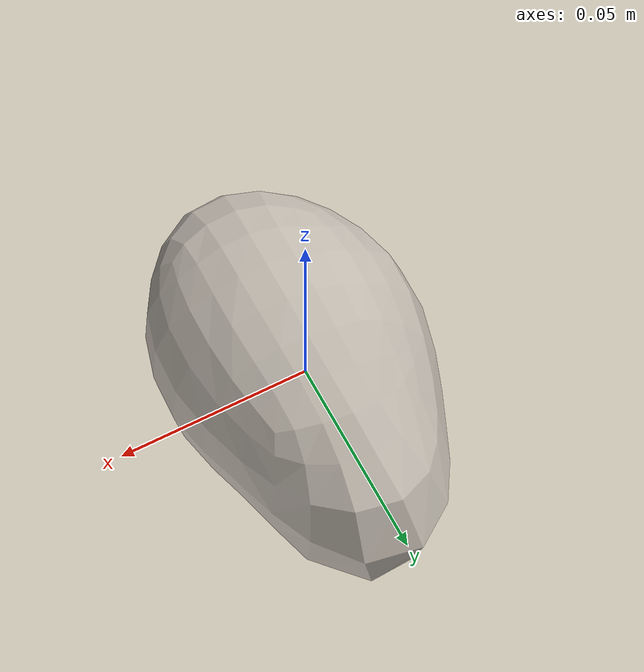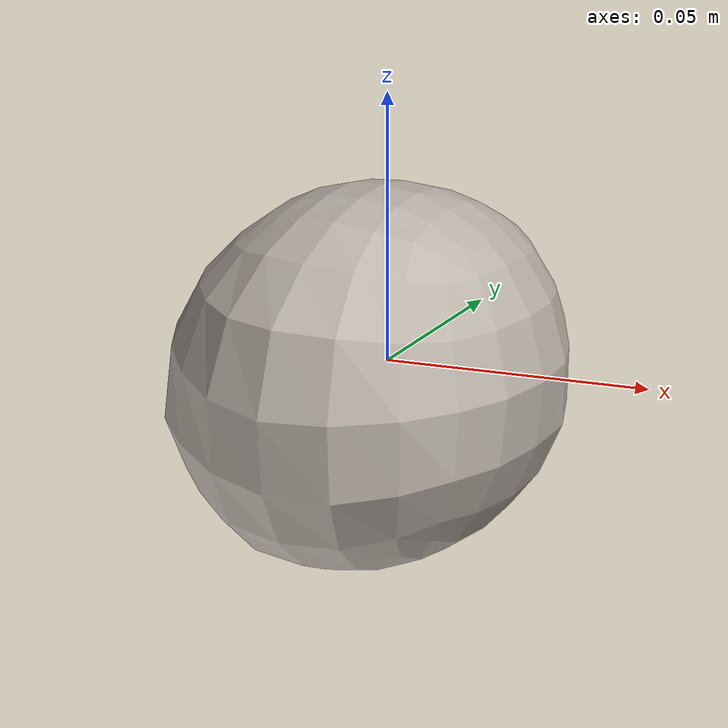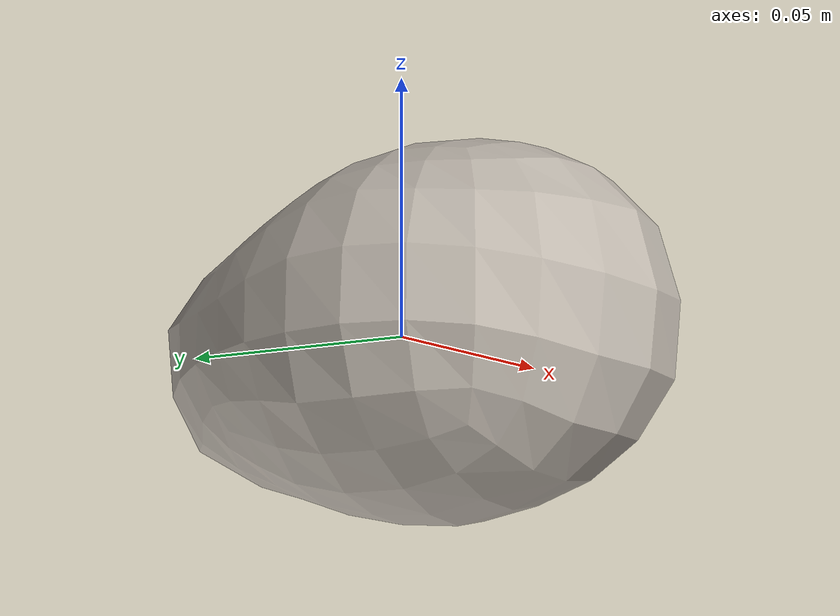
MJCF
<mujoco model="avocado_6">
  <asset>
    <mesh file="visual/model_normalized_0.obj" name="avocado_6_model_normalized_0_vis" scale="0.105 0.105 0.105" refquat="0.7071067811865475 0.7071067811865476 0.0 0.0" />
    <mesh file="collision/model_normalized_collision_22.obj" name="avocado_6_model_normalized_collision_22._coll" scale="0.105 0.105 0.105" refquat="0.7071067811865475 0.7071067811865476 0.0 0.0" />
    <mesh file="collision/model_normalized_collision_23.obj" name="avocado_6_model_normalized_collision_23._coll" scale="0.105 0.105 0.105" refquat="0.7071067811865475 0.7071067811865476 0.0 0.0" />
    <mesh file="collision/model_normalized_collision_21.obj" name="avocado_6_model_normalized_collision_21._coll" scale="0.105 0.105 0.105" refquat="0.7071067811865475 0.7071067811865476 0.0 0.0" />
    <mesh file="collision/model_normalized_collision_20.obj" name="avocado_6_model_normalized_collision_20._coll" scale="0.105 0.105 0.105" refquat="0.7071067811865475 0.7071067811865476 0.0 0.0" />
    <mesh file="collision/model_normalized_collision_24.obj" name="avocado_6_model_normalized_collision_24._coll" scale="0.105 0.105 0.105" refquat="0.7071067811865475 0.7071067811865476 0.0 0.0" />
    <mesh file="collision/model_normalized_collision_30.obj" name="avocado_6_model_normalized_collision_30._coll" scale="0.105 0.105 0.105" refquat="0.7071067811865475 0.7071067811865476 0.0 0.0" />
    <mesh file="collision/model_normalized_collision_18.obj" name="avocado_6_model_normalized_collision_18._coll" scale="0.105 0.105 0.105" refquat="0.7071067811865475 0.7071067811865476 0.0 0.0" />
    <mesh file="collision/model_normalized_collision_19.obj" name="avocado_6_model_normalized_collision_19._coll" scale="0.105 0.105 0.105" refquat="0.7071067811865475 0.7071067811865476 0.0 0.0" />
    <mesh file="collision/model_normalized_collision_31.obj" name="avocado_6_model_normalized_collision_31._coll" scale="0.105 0.105 0.105" refquat="0.7071067811865475 0.7071067811865476 0.0 0.0" />
    <mesh file="collision/model_normalized_collision_25.obj" name="avocado_6_model_normalized_collision_25._coll" scale="0.105 0.105 0.105" refquat="0.7071067811865475 0.7071067811865476 0.0 0.0" />
    <mesh file="collision/model_normalized_collision_27.obj" name="avocado_6_model_normalized_collision_27._coll" scale="0.105 0.105 0.105" refquat="0.7071067811865475 0.7071067811865476 0.0 0.0" />
    <mesh file="collision/model_normalized_collision_26.obj" name="avocado_6_model_normalized_collision_26._coll" scale="0.105 0.105 0.105" refquat="0.7071067811865475 0.7071067811865476 0.0 0.0" />
    <mesh file="collision/model_normalized_collision_9.obj" name="avocado_6_model_normalized_collision_9._coll" scale="0.105 0.105 0.105" refquat="0.7071067811865475 0.7071067811865476 0.0 0.0" />
    <mesh file="collision/model_normalized_collision_8.obj" name="avocado_6_model_normalized_collision_8._coll" scale="0.105 0.105 0.105" refquat="0.7071067811865475 0.7071067811865476 0.0 0.0" />
    <mesh file="collision/model_normalized_collision_6.obj" name="avocado_6_model_normalized_collision_6._coll" scale="0.105 0.105 0.105" refquat="0.7071067811865475 0.7071067811865476 0.0 0.0" />
    <mesh file="collision/model_normalized_collision_7.obj" name="avocado_6_model_normalized_collision_7._coll" scale="0.105 0.105 0.105" refquat="0.7071067811865475 0.7071067811865476 0.0 0.0" />
    <mesh file="collision/model_normalized_collision_5.obj" name="avocado_6_model_normalized_collision_5._coll" scale="0.105 0.105 0.105" refquat="0.7071067811865475 0.7071067811865476 0.0 0.0" />
    <mesh file="collision/model_normalized_collision_4.obj" name="avocado_6_model_normalized_collision_4._coll" scale="0.105 0.105 0.105" refquat="0.7071067811865475 0.7071067811865476 0.0 0.0" />
    <mesh file="collision/model_normalized_collision_0.obj" name="avocado_6_model_normalized_collision_0._coll" scale="0.105 0.105 0.105" refquat="0.7071067811865475 0.7071067811865476 0.0 0.0" />
    <mesh file="collision/model_normalized_collision_1.obj" name="avocado_6_model_normalized_collision_1._coll" scale="0.105 0.105 0.105" refquat="0.7071067811865475 0.7071067811865476 0.0 0.0" />
    <mesh file="collision/model_normalized_collision_3.obj" name="avocado_6_model_normalized_collision_3._coll" scale="0.105 0.105 0.105" refquat="0.7071067811865475 0.7071067811865476 0.0 0.0" />
    <mesh file="collision/model_normalized_collision_2.obj" name="avocado_6_model_normalized_collision_2._coll" scale="0.105 0.105 0.105" refquat="0.7071067811865475 0.7071067811865476 0.0 0.0" />
    <mesh file="collision/model_normalized_collision_17.obj" name="avocado_6_model_normalized_collision_17._coll" scale="0.105 0.105 0.105" refquat="0.7071067811865475 0.7071067811865476 0.0 0.0" />
    <mesh file="collision/model_normalized_collision_16.obj" name="avocado_6_model_normalized_collision_16._coll" scale="0.105 0.105 0.105" refquat="0.7071067811865475 0.7071067811865476 0.0 0.0" />
    <mesh file="collision/model_normalized_collision_28.obj" name="avocado_6_model_normalized_collision_28._coll" scale="0.105 0.105 0.105" refquat="0.7071067811865475 0.7071067811865476 0.0 0.0" />
    <mesh file="collision/model_normalized_collision_14.obj" name="avocado_6_model_normalized_collision_14._coll" scale="0.105 0.105 0.105" refquat="0.7071067811865475 0.7071067811865476 0.0 0.0" />
    <mesh file="collision/model_normalized_collision_15.obj" name="avocado_6_model_normalized_collision_15._coll" scale="0.105 0.105 0.105" refquat="0.7071067811865475 0.7071067811865476 0.0 0.0" />
    <mesh file="collision/model_normalized_collision_29.obj" name="avocado_6_model_normalized_collision_29._coll" scale="0.105 0.105 0.105" refquat="0.7071067811865475 0.7071067811865476 0.0 0.0" />
    <mesh file="collision/model_normalized_collision_11.obj" name="avocado_6_model_normalized_collision_11._coll" scale="0.105 0.105 0.105" refquat="0.7071067811865475 0.7071067811865476 0.0 0.0" />
    <mesh file="collision/model_normalized_collision_10.obj" name="avocado_6_model_normalized_collision_10._coll" scale="0.105 0.105 0.105" refquat="0.7071067811865475 0.7071067811865476 0.0 0.0" />
    <mesh file="collision/model_normalized_collision_12.obj" name="avocado_6_model_normalized_collision_12._coll" scale="0.105 0.105 0.105" refquat="0.7071067811865475 0.7071067811865476 0.0 0.0" />
    <mesh file="collision/model_normalized_collision_13.obj" name="avocado_6_model_normalized_collision_13._coll" scale="0.105 0.105 0.105" refquat="0.7071067811865475 0.7071067811865476 0.0 0.0" />
    <texture type="2d" name="avocado_6_image0" file="visual/image0.png" />
    <material name="avocado_6_Scene_-_Root.056" texture="avocado_6_image0" specular="0.5" shininess="0.15999998099999999" />
  </asset>
  <worldbody>
    <body>
      <joint name="avocado_6_object_joint" type="free" damping="1." /><body name="avocado_6_object">
        <geom solimp="0.998 0.998 0.001" solref="0.001 1" density="300" friction="0.95 0.3 0.1" type="mesh" mesh="avocado_6_model_normalized_0_vis" conaffinity="0" contype="0" group="1" material="avocado_6_Scene_-_Root.056" />
        <geom solimp="0.998 0.998 0.001" solref="0.001 1" density="300" friction="0.95 0.3 0.1" type="mesh" mesh="avocado_6_model_normalized_collision_22._coll" group="0" rgba="0.8 0.8 0.8 0.0" />
        <geom solimp="0.998 0.998 0.001" solref="0.001 1" density="300" friction="0.95 0.3 0.1" type="mesh" mesh="avocado_6_model_normalized_collision_23._coll" group="0" rgba="0.8 0.8 0.8 0.0" />
        <geom solimp="0.998 0.998 0.001" solref="0.001 1" density="300" friction="0.95 0.3 0.1" type="mesh" mesh="avocado_6_model_normalized_collision_21._coll" group="0" rgba="0.8 0.8 0.8 0.0" />
        <geom solimp="0.998 0.998 0.001" solref="0.001 1" density="300" friction="0.95 0.3 0.1" type="mesh" mesh="avocado_6_model_normalized_collision_20._coll" group="0" rgba="0.8 0.8 0.8 0.0" />
        <geom solimp="0.998 0.998 0.001" solref="0.001 1" density="300" friction="0.95 0.3 0.1" type="mesh" mesh="avocado_6_model_normalized_collision_24._coll" group="0" rgba="0.8 0.8 0.8 0.0" />
        <geom solimp="0.998 0.998 0.001" solref="0.001 1" density="300" friction="0.95 0.3 0.1" type="mesh" mesh="avocado_6_model_normalized_collision_30._coll" group="0" rgba="0.8 0.8 0.8 0.0" />
        <geom solimp="0.998 0.998 0.001" solref="0.001 1" density="300" friction="0.95 0.3 0.1" type="mesh" mesh="avocado_6_model_normalized_collision_18._coll" group="0" rgba="0.8 0.8 0.8 0.0" />
        <geom solimp="0.998 0.998 0.001" solref="0.001 1" density="300" friction="0.95 0.3 0.1" type="mesh" mesh="avocado_6_model_normalized_collision_19._coll" group="0" rgba="0.8 0.8 0.8 0.0" />
        <geom solimp="0.998 0.998 0.001" solref="0.001 1" density="300" friction="0.95 0.3 0.1" type="mesh" mesh="avocado_6_model_normalized_collision_31._coll" group="0" rgba="0.8 0.8 0.8 0.0" />
        <geom solimp="0.998 0.998 0.001" solref="0.001 1" density="300" friction="0.95 0.3 0.1" type="mesh" mesh="avocado_6_model_normalized_collision_25._coll" group="0" rgba="0.8 0.8 0.8 0.0" />
        <geom solimp="0.998 0.998 0.001" solref="0.001 1" density="300" friction="0.95 0.3 0.1" type="mesh" mesh="avocado_6_model_normalized_collision_27._coll" group="0" rgba="0.8 0.8 0.8 0.0" />
        <geom solimp="0.998 0.998 0.001" solref="0.001 1" density="300" friction="0.95 0.3 0.1" type="mesh" mesh="avocado_6_model_normalized_collision_26._coll" group="0" rgba="0.8 0.8 0.8 0.0" />
        <geom solimp="0.998 0.998 0.001" solref="0.001 1" density="300" friction="0.95 0.3 0.1" type="mesh" mesh="avocado_6_model_normalized_collision_9._coll" group="0" rgba="0.8 0.8 0.8 0.0" />
        <geom solimp="0.998 0.998 0.001" solref="0.001 1" density="300" friction="0.95 0.3 0.1" type="mesh" mesh="avocado_6_model_normalized_collision_8._coll" group="0" rgba="0.8 0.8 0.8 0.0" />
        <geom solimp="0.998 0.998 0.001" solref="0.001 1" density="300" friction="0.95 0.3 0.1" type="mesh" mesh="avocado_6_model_normalized_collision_6._coll" group="0" rgba="0.8 0.8 0.8 0.0" />
        <geom solimp="0.998 0.998 0.001" solref="0.001 1" density="300" friction="0.95 0.3 0.1" type="mesh" mesh="avocado_6_model_normalized_collision_7._coll" group="0" rgba="0.8 0.8 0.8 0.0" />
        <geom solimp="0.998 0.998 0.001" solref="0.001 1" density="300" friction="0.95 0.3 0.1" type="mesh" mesh="avocado_6_model_normalized_collision_5._coll" group="0" rgba="0.8 0.8 0.8 0.0" />
        <geom solimp="0.998 0.998 0.001" solref="0.001 1" density="300" friction="0.95 0.3 0.1" type="mesh" mesh="avocado_6_model_normalized_collision_4._coll" group="0" rgba="0.8 0.8 0.8 0.0" />
        <geom solimp="0.998 0.998 0.001" solref="0.001 1" density="300" friction="0.95 0.3 0.1" type="mesh" mesh="avocado_6_model_normalized_collision_0._coll" group="0" rgba="0.8 0.8 0.8 0.0" />
        <geom solimp="0.998 0.998 0.001" solref="0.001 1" density="300" friction="0.95 0.3 0.1" type="mesh" mesh="avocado_6_model_normalized_collision_1._coll" group="0" rgba="0.8 0.8 0.8 0.0" />
        <geom solimp="0.998 0.998 0.001" solref="0.001 1" density="300" friction="0.95 0.3 0.1" type="mesh" mesh="avocado_6_model_normalized_collision_3._coll" group="0" rgba="0.8 0.8 0.8 0.0" />
        <geom solimp="0.998 0.998 0.001" solref="0.001 1" density="300" friction="0.95 0.3 0.1" type="mesh" mesh="avocado_6_model_normalized_collision_2._coll" group="0" rgba="0.8 0.8 0.8 0.0" />
        <geom solimp="0.998 0.998 0.001" solref="0.001 1" density="300" friction="0.95 0.3 0.1" type="mesh" mesh="avocado_6_model_normalized_collision_17._coll" group="0" rgba="0.8 0.8 0.8 0.0" />
        <geom solimp="0.998 0.998 0.001" solref="0.001 1" density="300" friction="0.95 0.3 0.1" type="mesh" mesh="avocado_6_model_normalized_collision_16._coll" group="0" rgba="0.8 0.8 0.8 0.0" />
        <geom solimp="0.998 0.998 0.001" solref="0.001 1" density="300" friction="0.95 0.3 0.1" type="mesh" mesh="avocado_6_model_normalized_collision_28._coll" group="0" rgba="0.8 0.8 0.8 0.0" />
        <geom solimp="0.998 0.998 0.001" solref="0.001 1" density="300" friction="0.95 0.3 0.1" type="mesh" mesh="avocado_6_model_normalized_collision_14._coll" group="0" rgba="0.8 0.8 0.8 0.0" />
        <geom solimp="0.998 0.998 0.001" solref="0.001 1" density="300" friction="0.95 0.3 0.1" type="mesh" mesh="avocado_6_model_normalized_collision_15._coll" group="0" rgba="0.8 0.8 0.8 0.0" />
        <geom solimp="0.998 0.998 0.001" solref="0.001 1" density="300" friction="0.95 0.3 0.1" type="mesh" mesh="avocado_6_model_normalized_collision_29._coll" group="0" rgba="0.8 0.8 0.8 0.0" />
        <geom solimp="0.998 0.998 0.001" solref="0.001 1" density="300" friction="0.95 0.3 0.1" type="mesh" mesh="avocado_6_model_normalized_collision_11._coll" group="0" rgba="0.8 0.8 0.8 0.0" />
        <geom solimp="0.998 0.998 0.001" solref="0.001 1" density="300" friction="0.95 0.3 0.1" type="mesh" mesh="avocado_6_model_normalized_collision_10._coll" group="0" rgba="0.8 0.8 0.8 0.0" />
        <geom solimp="0.998 0.998 0.001" solref="0.001 1" density="300" friction="0.95 0.3 0.1" type="mesh" mesh="avocado_6_model_normalized_collision_12._coll" group="0" rgba="0.8 0.8 0.8 0.0" />
        <geom solimp="0.998 0.998 0.001" solref="0.001 1" density="300" friction="0.95 0.3 0.1" type="mesh" mesh="avocado_6_model_normalized_collision_13._coll" group="0" rgba="0.8 0.8 0.8 0.0" />
      </body>

    </body>
  </worldbody>
</mujoco>
